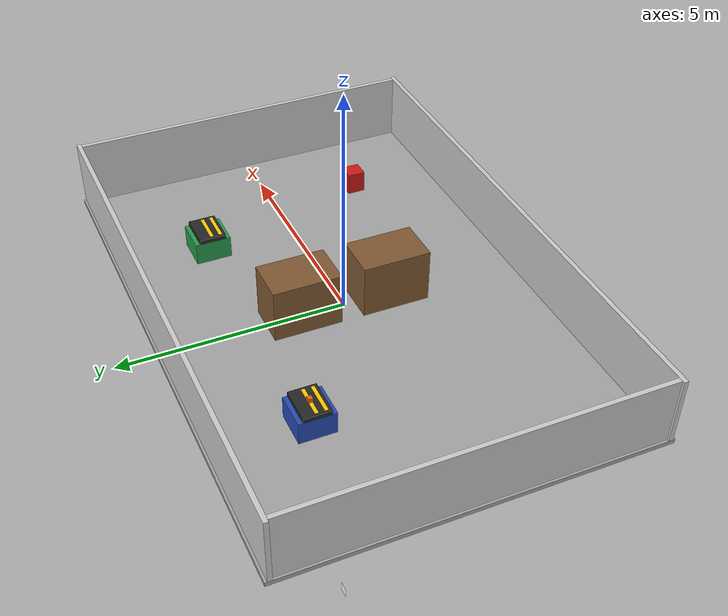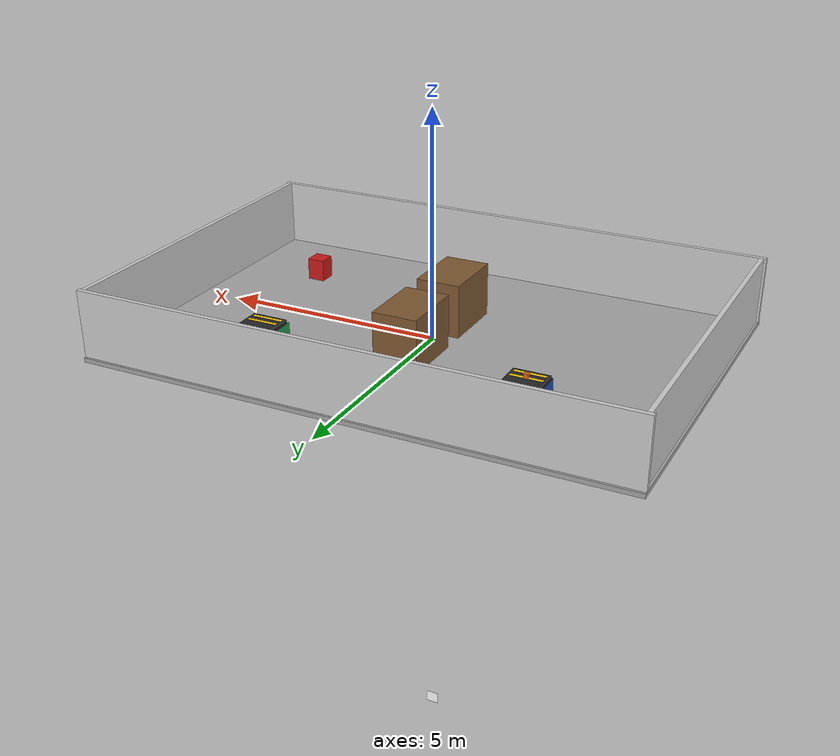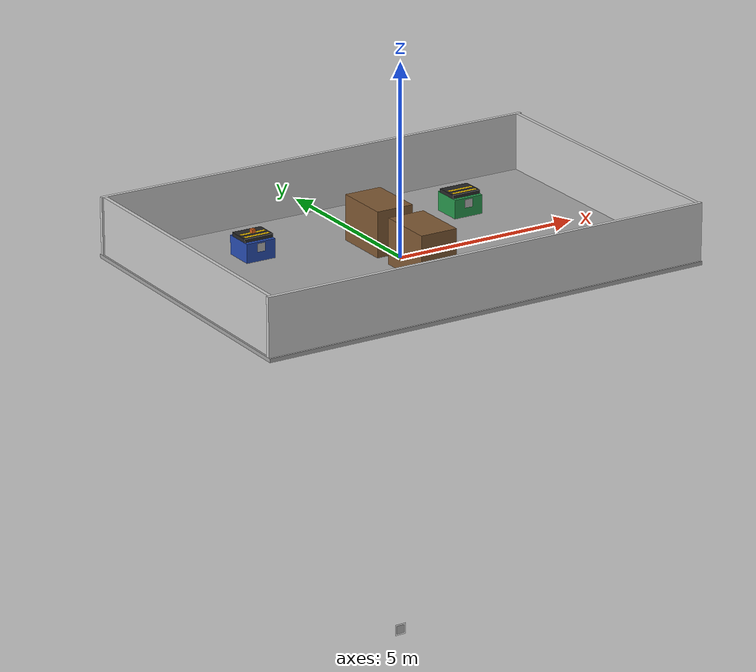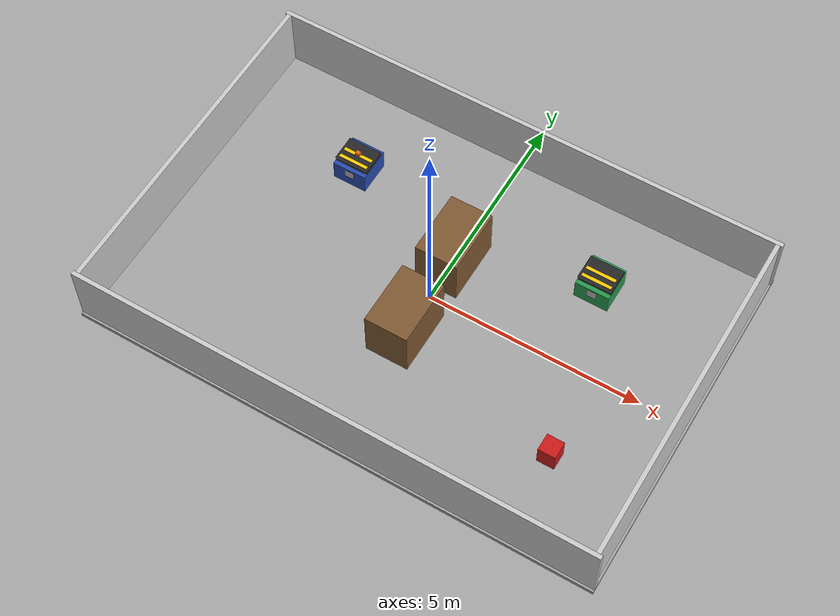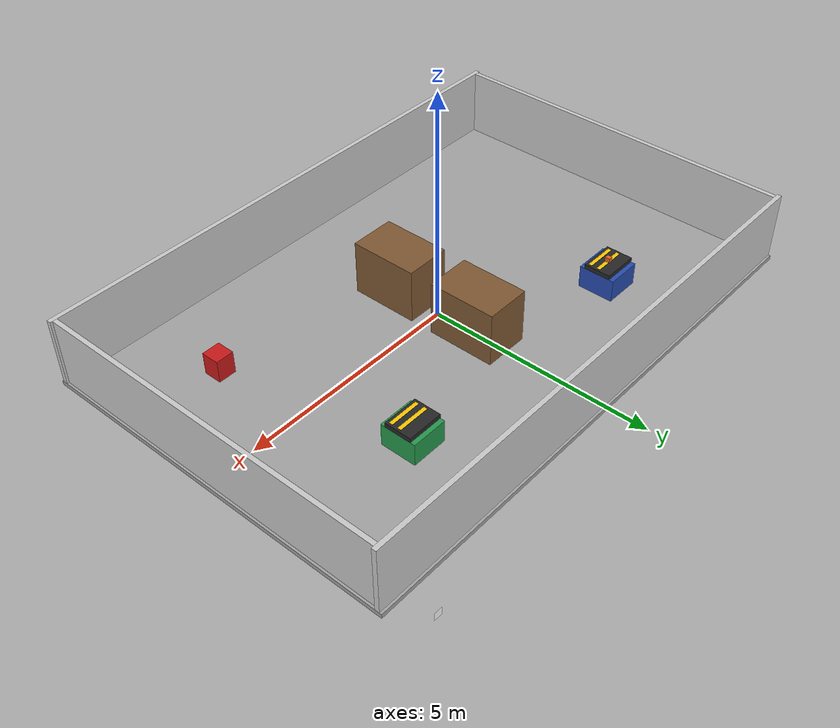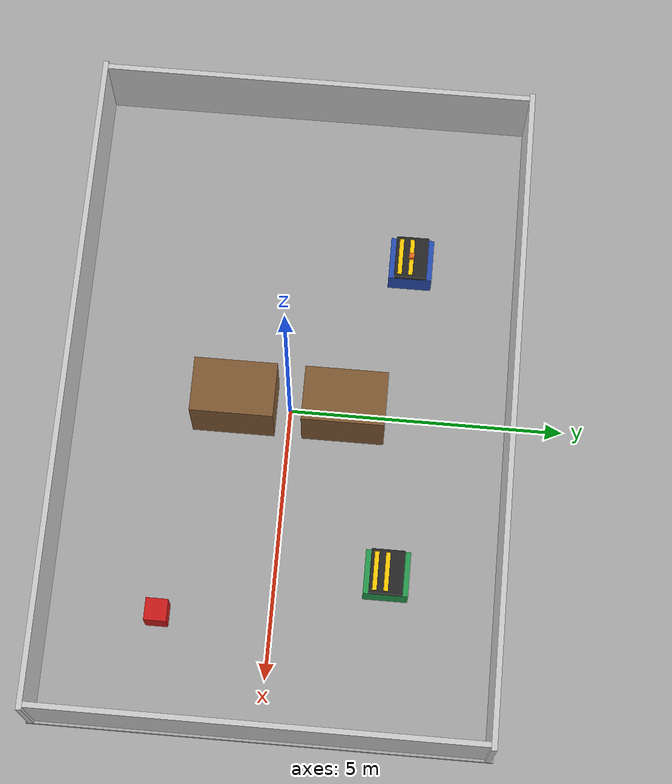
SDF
<?xml version="1.0"?>
<!-- SPDX-License-Identifier: Apache-2.0 -->
<sdf version="1.6"><world name="factory_floor">
    <plugin name="entity_state" filename="libgazebo_ros_state.so"><ros><namespace>/gazebo</namespace></ros><update_rate>20</update_rate></plugin>
    <gravity>0 0 -9.81</gravity>
    <physics name="deterministic_ode" type="ode"><max_step_size>0.001</max_step_size><real_time_update_rate>1000</real_time_update_rate><real_time_factor>1</real_time_factor></physics>
    <scene><ambient>0.6 0.6 0.6 1</ambient><background>0.7 0.7 0.7 1</background><shadows>false</shadows></scene>
    <light name="sun" type="directional"><pose>0 0 10 0 0 0</pose><diffuse>0.8 0.8 0.8 1</diffuse><specular>0.1 0.1 0.1 1</specular><direction>-0.3 -0.4 -1</direction></light>
    <model name="floor"><static>true</static><pose>0 0 -0.05 0 0 0</pose><link name="body">
      <collision name="body"><pose>0 0 0 0 0 0</pose><geometry><box><size>12.2 8.2 0.1</size></box></geometry></collision>
      <visual name="body"><pose>0 0 0 0 0 0</pose><geometry><box><size>12.2 8.2 0.1</size></box></geometry><material><ambient>0.65 0.65 0.65 1</ambient><diffuse>0.65 0.65 0.65 1</diffuse></material></visual>
    </link></model>
    <model name="wall_west"><static>true</static><pose>-6 0 0.75 0 0 0</pose><link name="body">
      <collision name="body"><pose>0 0 0 0 0 0</pose><geometry><box><size>0.1 7.9 1.5</size></box></geometry></collision>
      <visual name="body"><pose>0 0 0 0 0 0</pose><geometry><box><size>0.1 7.9 1.5</size></box></geometry><material><ambient>0.8 0.8 0.8 1</ambient><diffuse>0.8 0.8 0.8 1</diffuse></material></visual>
    </link></model>
    <model name="wall_east"><static>true</static><pose>6 0 0.75 0 0 0</pose><link name="body">
      <collision name="body"><pose>0 0 0 0 0 0</pose><geometry><box><size>0.1 7.9 1.5</size></box></geometry></collision>
      <visual name="body"><pose>0 0 0 0 0 0</pose><geometry><box><size>0.1 7.9 1.5</size></box></geometry><material><ambient>0.8 0.8 0.8 1</ambient><diffuse>0.8 0.8 0.8 1</diffuse></material></visual>
    </link></model>
    <model name="wall_north"><static>true</static><pose>0 4 0.75 0 0 0</pose><link name="body">
      <collision name="body"><pose>0 0 0 0 0 0</pose><geometry><box><size>12.2 0.1 1.5</size></box></geometry></collision>
      <visual name="body"><pose>0 0 0 0 0 0</pose><geometry><box><size>12.2 0.1 1.5</size></box></geometry><material><ambient>0.8 0.8 0.8 1</ambient><diffuse>0.8 0.8 0.8 1</diffuse></material></visual>
    </link></model>
    <model name="wall_south"><static>true</static><pose>0 -4 0.75 0 0 0</pose><link name="body">
      <collision name="body"><pose>0 0 0 0 0 0</pose><geometry><box><size>12.2 0.1 1.5</size></box></geometry></collision>
      <visual name="body"><pose>0 0 0 0 0 0</pose><geometry><box><size>12.2 0.1 1.5</size></box></geometry><material><ambient>0.8 0.8 0.8 1</ambient><diffuse>0.8 0.8 0.8 1</diffuse></material></visual>
    </link></model>
    <model name="shelf_north"><static>true</static><pose>0 1 0.6 0 0 0</pose><link name="body">
      <collision name="body"><pose>0 0 0 0 0 0</pose><geometry><box><size>1 1.5 1.2</size></box></geometry></collision>
      <visual name="body"><pose>0 0 0 0 0 0</pose><geometry><box><size>1 1.5 1.2</size></box></geometry><material><ambient>0.5 0.35 0.2 1</ambient><diffuse>0.5 0.35 0.2 1</diffuse></material></visual>
    </link></model>
    <model name="shelf_south"><static>true</static><pose>0 -1 0.6 0 0 0</pose><link name="body">
      <collision name="body"><pose>0 0 0 0 0 0</pose><geometry><box><size>1 1.5 1.2</size></box></geometry></collision>
      <visual name="body"><pose>0 0 0 0 0 0</pose><geometry><box><size>1 1.5 1.2</size></box></geometry><material><ambient>0.5 0.35 0.2 1</ambient><diffuse>0.5 0.35 0.2 1</diffuse></material></visual>
    </link></model>
    <include><uri>model://assembly_station</uri><name>assembly_station</name><pose>-3 2 0 0 0 0</pose></include>
    <include><uri>model://inspection_station</uri><name>inspection_station</name><pose>3 2 0 0 0 0</pose></include>
    <!-- Fault board stays below the floor unless an explicit matching control activates it. -->
    <include><uri>model://wrong_marker_station</uri><name>wrong_marker_station</name><pose>0 0 -10 0 0 0</pose></include>
    <!-- The visual payload uses explicit poses, including stable storage below the floor. -->
    <include><uri>model://factory_part</uri><name>factory_part</name><static>false</static><pose>-3 2 0.65 0 0 0</pose></include>
    <!-- Separate collision-free stripes animate above each fixed conveyor surface. -->
    <model name="assembly_conveyor"><static>true</static><pose>-3 2 0.603 0 0 0</pose><link name="belt_link">
      <visual name="stripe"><geometry><box><size>0.7 0.08 0.004</size></box></geometry><material><ambient>1 0.8 0 1</ambient><diffuse>1 0.8 0 1</diffuse></material></visual>
      <visual name="stripe_rear"><pose>0 -0.2 0 0 0 0</pose><geometry><box><size>0.7 0.08 0.004</size></box></geometry><material><ambient>1 0.8 0 1</ambient><diffuse>1 0.8 0 1</diffuse></material></visual>
    </link></model>
    <model name="inspection_conveyor"><static>true</static><pose>3 2 0.603 0 0 0</pose><link name="belt_link">
      <visual name="stripe"><geometry><box><size>0.7 0.08 0.004</size></box></geometry><material><ambient>1 0.8 0 1</ambient><diffuse>1 0.8 0 1</diffuse></material></visual>
      <visual name="stripe_rear"><pose>0 -0.2 0 0 0 0</pose><geometry><box><size>0.7 0.08 0.004</size></box></geometry><material><ambient>1 0.8 0 1</ambient><diffuse>1 0.8 0 1</diffuse></material></visual>
    </link></model>
    <model name="dynamic_obstacle"><static>false</static><pose>4 -2 0.25 0 0 0</pose><link name="obstacle_link"><inertial><mass>5</mass><inertia><ixx>0.170833</ixx><iyy>0.170833</iyy><izz>0.133333</izz></inertia></inertial>
      <collision name="body"><pose>0 0 0 0 0 0</pose><geometry><box><size>0.4 0.4 0.5</size></box></geometry></collision>
      <visual name="body"><pose>0 0 0 0 0 0</pose><geometry><box><size>0.4 0.4 0.5</size></box></geometry><material><ambient>0.8 0.1 0.1 1</ambient><diffuse>0.8 0.1 0.1 1</diffuse></material></visual>
    </link></model>
</world></sdf>

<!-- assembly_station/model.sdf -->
<!-- SPDX-License-Identifier: Apache-2.0 -->
<sdf version="1.6"><model name="assembly_station"><static>true</static><link name="station_link">
      <collision name="body"><pose>0 0 0.25 0 0 0</pose><geometry><box><size>0.8 0.8 0.5</size></box></geometry></collision>
      <visual name="body"><pose>0 0 0.25 0 0 0</pose><geometry><box><size>0.8 0.8 0.5</size></box></geometry><material><ambient>0.15 0.3 0.7 1</ambient><diffuse>0.15 0.3 0.7 1</diffuse></material></visual>
      <collision name="conveyor"><pose>0 0 0.55 0 0 0</pose><geometry><box><size>0.8 0.6 0.1</size></box></geometry></collision>
      <visual name="conveyor"><pose>0 0 0.55 0 0 0</pose><geometry><box><size>0.8 0.6 0.1</size></box></geometry><material><ambient>0.15 0.15 0.15 1</ambient><diffuse>0.15 0.15 0.15 1</diffuse></material></visual>
      <!-- Gazebo renders the unit plane in XY; rotate its +Z normal toward -Y. -->
      <visual name="marker_plane"><pose>0 -0.405 0.35 1.5707963267948966 0 0</pose><geometry><plane><normal>0 0 1</normal><size>0.22 0.22</size></plane></geometry><material><script><uri>model://assembly_station/materials/scripts</uri><uri>model://assembly_station/materials/textures</uri><name>Factory/AssemblyMarker</name></script></material></visual>
</link></model></sdf>

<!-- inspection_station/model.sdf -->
<!-- SPDX-License-Identifier: Apache-2.0 -->
<sdf version="1.6"><model name="inspection_station"><static>true</static><link name="station_link">
      <collision name="body"><pose>0 0 0.25 0 0 0</pose><geometry><box><size>0.8 0.8 0.5</size></box></geometry></collision>
      <visual name="body"><pose>0 0 0.25 0 0 0</pose><geometry><box><size>0.8 0.8 0.5</size></box></geometry><material><ambient>0.15 0.6 0.3 1</ambient><diffuse>0.15 0.6 0.3 1</diffuse></material></visual>
      <collision name="conveyor"><pose>0 0 0.55 0 0 0</pose><geometry><box><size>0.8 0.6 0.1</size></box></geometry></collision>
      <visual name="conveyor"><pose>0 0 0.55 0 0 0</pose><geometry><box><size>0.8 0.6 0.1</size></box></geometry><material><ambient>0.15 0.15 0.15 1</ambient><diffuse>0.15 0.15 0.15 1</diffuse></material></visual>
      <!-- Gazebo renders the unit plane in XY; rotate its +Z normal toward -Y. -->
      <visual name="marker_plane"><pose>0 -0.405 0.35 1.5707963267948966 0 0</pose><geometry><plane><normal>0 0 1</normal><size>0.22 0.22</size></plane></geometry><material><script><uri>model://inspection_station/materials/scripts</uri><uri>model://inspection_station/materials/textures</uri><name>Factory/InspectionMarker</name></script></material></visual>
</link></model></sdf>

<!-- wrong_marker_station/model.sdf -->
<!-- SPDX-License-Identifier: Apache-2.0 -->
<sdf version="1.6"><model name="wrong_marker_station"><static>true</static><link name="board">
  <!-- Collision-free opaque board covers the original marker without altering navigation geometry. -->
  <visual name="backing"><pose>0 0.003 0 0 0 0</pose><geometry><box><size>0.30 0.004 0.30</size></box></geometry><material><ambient>1 1 1 1</ambient><diffuse>1 1 1 1</diffuse></material></visual>
  <visual name="marker_plane"><pose>0 0 0 1.5707963267948966 0 0</pose><geometry><plane><normal>0 0 1</normal><size>0.22 0.22</size></plane></geometry><material><script><uri>model://inspection_station/materials/scripts</uri><uri>model://inspection_station/materials/textures</uri><name>Factory/InspectionMarker</name></script></material></visual>
</link></model></sdf>

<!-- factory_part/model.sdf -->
<!-- SPDX-License-Identifier: Apache-2.0 -->
<sdf version="1.6"><model name="factory_part"><static>false</static><link name="part_link"><gravity>false</gravity><kinematic>true</kinematic><inertial><mass>0.1</mass><inertia><ixx>0.000166667</ixx><iyy>0.000166667</iyy><izz>0.000166667</izz></inertia></inertial>
      <collision name="part"><pose>0 0 0 0 0 0</pose><geometry><box><size>0.1 0.1 0.1</size></box></geometry></collision>
      <visual name="part"><pose>0 0 0 0 0 0</pose><geometry><box><size>0.1 0.1 0.1</size></box></geometry><material><ambient>0.9 0.4 0.1 1</ambient><diffuse>0.9 0.4 0.1 1</diffuse></material></visual>
</link></model></sdf>
